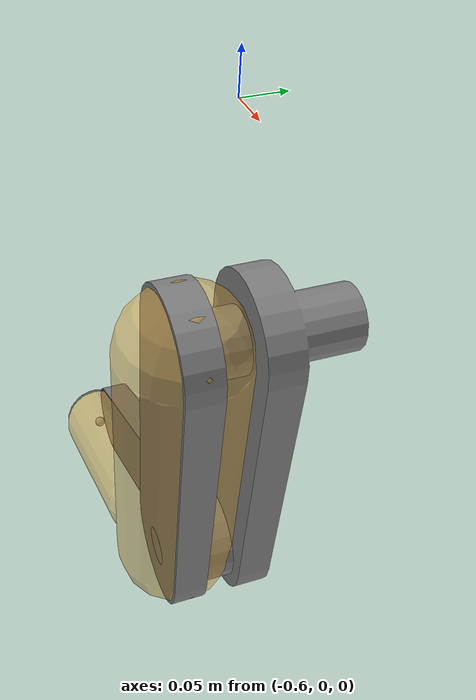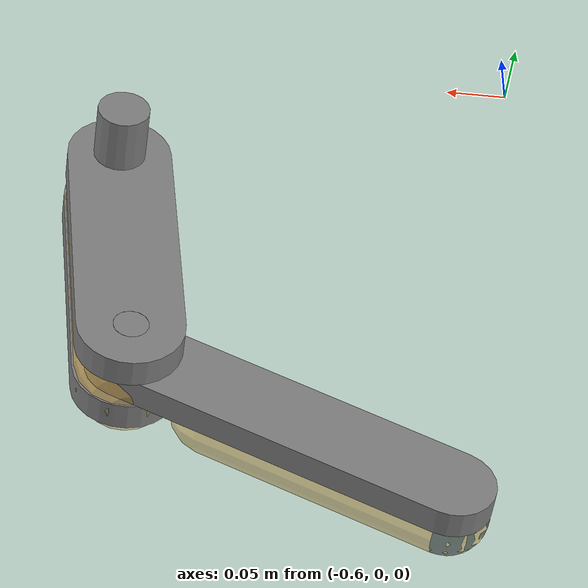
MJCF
<mujoco model="cheetah">
  <compiler angle="radian" meshdir="meshes/" inertiafromgeom="false"/>

  <asset>
    <mesh name="br_hip" file="br_hip.STL"/>
    <mesh name="br_knee" file="br_knee.STL"/>
  </asset>

  <worldbody>
    <body name="br_hip" pos="-0.28023 -0.1375 0" quat="0.999048 0 0.0436192 0">
      <inertial pos="0 0.00368968 -0.092947" quat="0.999589 -0.0286799 0 0" mass="0.404108" diaginertia="0.00309049 0.00299939 0.00057831"/>
      <joint name="br_hip_joint" pos="0 0 0" axis="0 1 0"/>
      <geom type="mesh" mesh="br_hip"/>
      <geom type="capsule" size="0.045" fromto="0 -0.0225 0 0 -0.0225 -0.21" group="0" contype="1" conaffinity="1"  rgba="0.85 0.65 0.25 0.5"/>
      <body name="br_knee" pos="0 0 -0.21" quat="0.965926 0 -0.25882 0">
        <inertial pos="-0.136981 0 0" quat="0.5 0.5 0.5 0.5" mass="0.191716" diaginertia="0.00208985 0.00203485 8.82166e-05"/>
        <joint name="br_knee_joint" pos="0 0 0" axis="0 1 0"/>
        <geom type="mesh" mesh="br_knee"/>
        <geom type="capsule" size="0.035" fromto="-0.08 -0.0225 0 -0.29 -0.0225 0" group="0" contype="1" conaffinity="1"  rgba="0.85 0.65 0.25 0.5"/>
        <body name="br_foot" pos="-0.29 -0.0225 0">
          <inertial pos="0 0 0" mass="0.001" diaginertia="0.001 0.001 0.001"/>
          <geom group="1" type="sphere" size="0.035" solimp="0.015 1 0.031" friction="0.8 0.02 0.01" rgba="0 0 0 0.5"/>
          <site name="br_foot"/>
        </body>
      </body>
    </body>
  </worldbody>

  <actuator>
    <general name="br_hip_act" joint="br_hip_joint"/>
    <general name="br_knee_act" joint="br_knee_joint"/>
  </actuator>

  <sensor>
    <jointpos joint="br_hip_joint" name="br_hip_pos"/>
    <jointpos joint="br_knee_joint" name="br_knee_pos"/>
    <jointvel joint="br_hip_joint" name="br_hip_vel"/>
    <jointvel joint="br_knee_joint" name="br_knee_vel"/>
  </sensor>
</mujoco>
